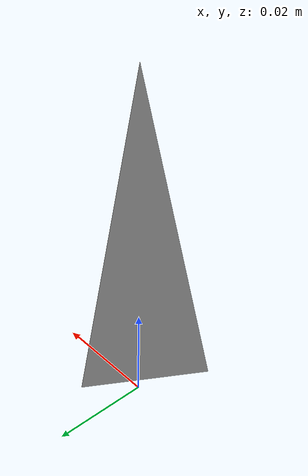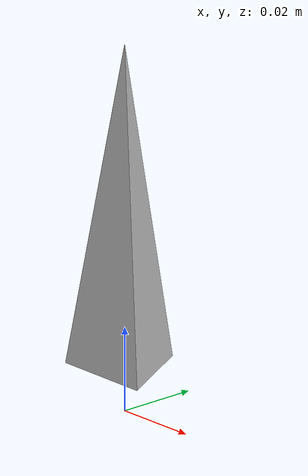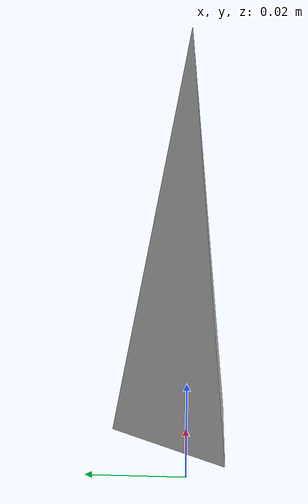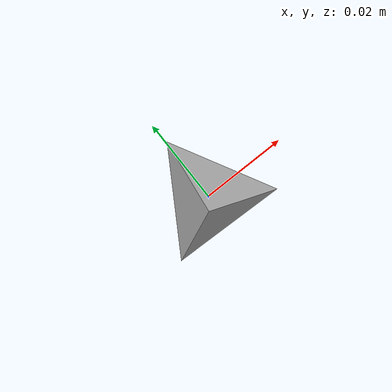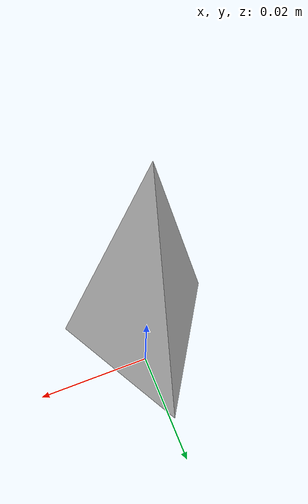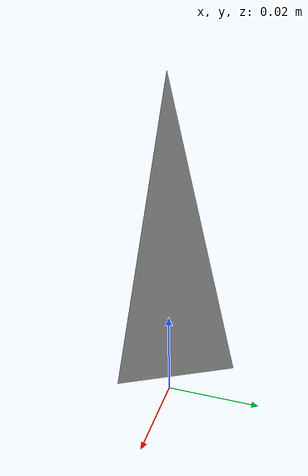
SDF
<sdf version='1.6'>
  <model name='tr_pyramid'>
    <link name='object'>
      <pose frame=''>0 0 0.01 0 -0 0</pose>
      <inertial>
        <pose frame=''>0 0 0.018772 0 -0 0</pose>
        <mass>0.0067737</mass>
        <inertia>
          <ixx>1.53801e-06</ixx>
          <ixy>-1.53481e-23</ixy>
          <ixz>2.52032e-22</ixz>
          <iyy>1.53801e-06</iyy>
          <iyz>1.25584e-22</iyz>
          <izz>2.11679e-07</izz>
        </inertia>
      </inertial>
      <collision name='object_collision'>
        <pose frame=''>0 0 0 1.5708 -0 0</pose>
        <geometry>
          <mesh>
            <scale>1 1 1</scale>
            <uri>model://tr_pyramid/untitled.dae</uri>
          </mesh>
        </geometry>
        <surface>
          <friction>
            <ode>
              <mu>1.0</mu>
              <mu2>1.0</mu2>
            </ode>
          </friction>
          <contact>
            <ode>
              <kp>100000.0</kp>
              <kd>1.0</kd>
              <min_depth>0.0000001</min_depth>
              <max_vel>0.1</max_vel>
            </ode>
          </contact>
        </surface>
      </collision>
      <visual name='object_visual'>
        <pose frame=''>0 0 0 1.5708 -0 0</pose>
        <geometry>
          <mesh>
            <scale>1 1 1</scale>
            <uri>model://tr_pyramid/untitled.dae</uri>
          </mesh>
        </geometry>
      </visual>
    </link>
  </model>
</sdf>
